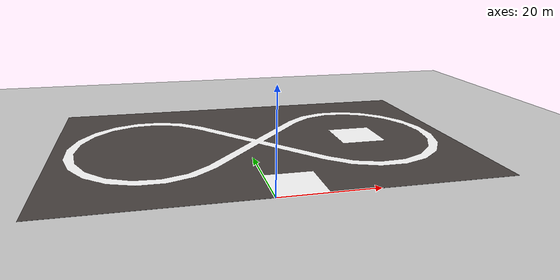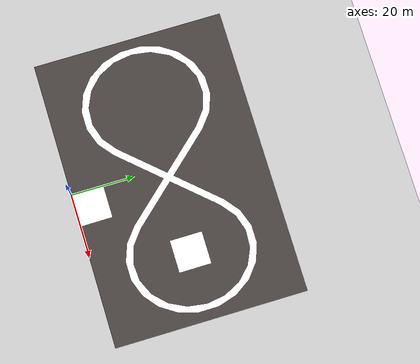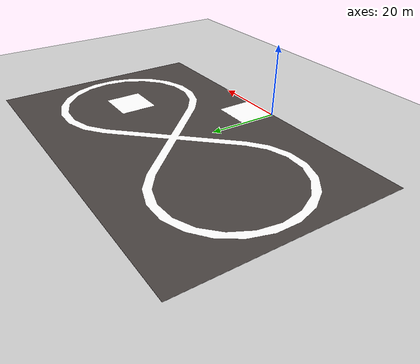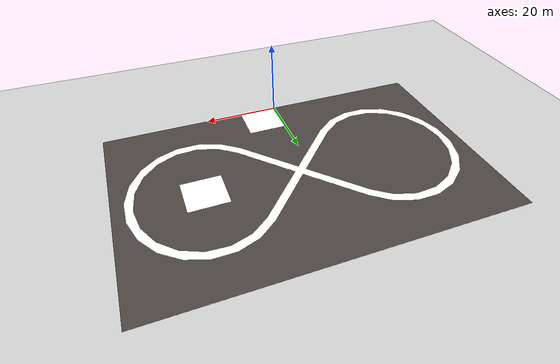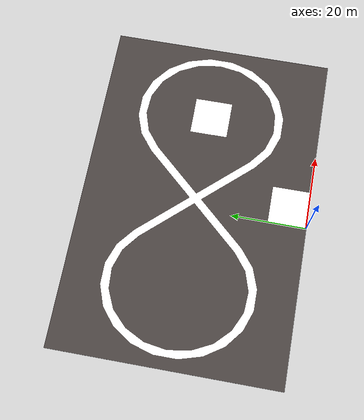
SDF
<?xml version="1.0" ?>
<sdf version="1.6">
	<world name="default">

		<!-- A global light source -->
		<include>
			<uri>model://sun</uri>
		</include>

		<!-- A ground plane -->
		<include>
			<uri>model://ground_plane</uri>
		</include>

		<!--Model Blender of Stage-->

		<model name="testbed_scene">
			<static>true</static>
			<pose>6.5 37.33 0 0 0 0</pose>
			<link name="test_scene">
				<visual name="visual">
					<geometry>
						<mesh><uri>model://stage_02_gazebo.dae</uri></mesh>
					</geometry>
				</visual>
			</link>
		</model>

	</world>
</sdf>
